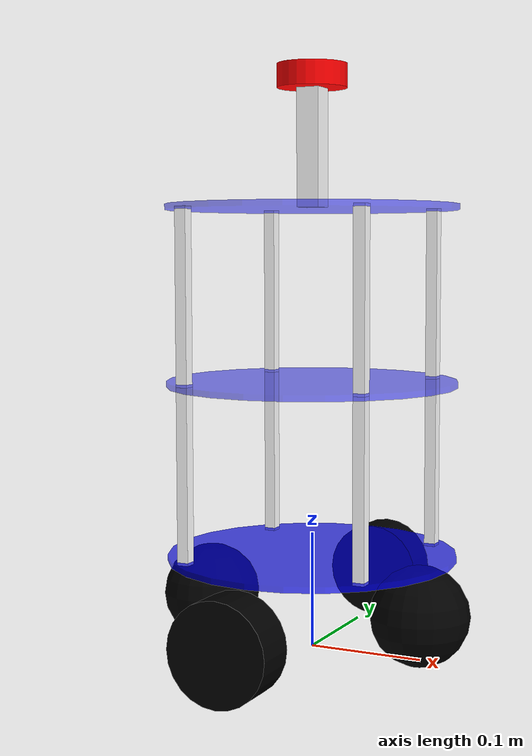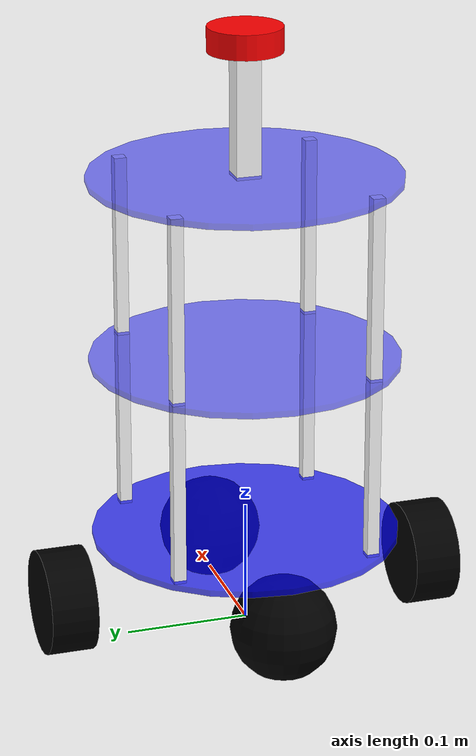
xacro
<?xml version="1.0"?>
<robot name="my_robot" xmlns:xacro="http://www.ros.org/wiki/xacro">

 <link name="base_footprint" />

  <joint name="base_link_joint" type="fixed">
    <parent link="base_footprint" />
    <child link="base_link" />

    <origin xyz="0 0 0.0805" rpy="0 0 0" />
  </joint>

  <link name="base_link">
    <visual>
      <!-- origin ở đây giúp căn chỉnh hình dáng so với tâm hệ tọa độ -->
      <origin xyz="0 0 0" rpy="0 0 0"/>
      <geometry>
        <!-- Tấm mica tròn dày 0.005m, bán kính 0.125m -->
        <cylinder length="0.005" radius="0.125"/>
      </geometry>
      <material name="blue">
        <color rgba="0 0 1 0.7"/> <!-- Màu xanh trong suốt cho giống mica -->
      </material>
    </visual>
  </link>

  <!-- Link cho bánh xe bên trái -->
  <link name="left_wheel">
    <visual>
      <!-- Xoay hình trụ 90 độ quanh trục X để nó nằm ngang (1.5708 rad = 90 deg) -->
      <origin xyz="0 0 0" rpy="1.5708 0 0"/>
      <geometry>
        <cylinder length="0.038" radius="0.0425"/>
      </geometry>
      <material name="black">
        <color rgba="0 0 0 1"/>
      </material>
    </visual>
  </link>

  <!-- Khớp nối bánh xe với base_link -->
  <joint name="left_wheel_joint" type="continuous">
    <parent link="base_link"/>
    <child link="left_wheel"/>
    <!-- Vị trí gắn: x=0 (giữa xe), y=0.154 (bên trái), z=-0.038 (dưới tấm mica) -->
    <origin xyz="0 0.154 -0.0425" rpy="0 0 0"/>
    <!-- Trục xoay của bánh xe là trục Y -->
    <axis xyz="0 1 0"/>
  </joint>

  <!-- Link cho bánh xe bên phai -->
  <link name="right_wheel">
    <visual>
      <!-- Xoay hình trụ 90 độ quanh trục X để nó nằm ngang (1.5708 rad = 90 deg) -->
      <origin xyz="0 0 0" rpy="1.5708 0 0"/>
      <geometry>
        <cylinder length="0.038" radius="0.0425"/>
      </geometry>
      <material name="black">
        <color rgba="0 0 0 1"/>
      </material>
    </visual>
  </link>

  <!-- hớp nối bánh xe với base_link -->
  <joint name="right_wheel_joint" type="continuous">
    <parent link="base_link"/>
    <child link="right_wheel"/>
    <!-- Vị trí gắn: x=0 (giữa xe), y=0.154 (bên trái), z=-0.038 (dưới tấm mica) -->
    <origin xyz="0 -0.154 -0.0425" rpy="0 0 0"/>
    <!-- Trục xoay của bánh xe là trục Y -->
    <axis xyz="0 1 0"/>
  </joint>

  <!-- Link cho thanh nhôm trai truoc -->
  <link name="pillar_front_left">
  <visual>
    <geometry>
      <box size="0.01 0.01 0.15"/> <!-- Thanh nhôm 20x20mm, cao 150mm -->
    </geometry>
    <material name="white">
      <color rgba="1 1 1 1"/>
    </material>
  </visual>
  </link>

  <!-- Khớp nối thanh nhôm vào tầng 1 (base_link) -->
  <joint name="pillar_front_left_joint" type="fixed">
  <parent link="base_link"/>
  <child link="pillar_front_left"/>
  <!-- Đặt thanh nhôm cách tâm 8cm về phía trước và 8cm sang trái -->
  <origin xyz="0.08 0.08 0.075" rpy="0 0 0"/>
  </joint>

  <!-- Link cho thanh nhôm trai sau -->
  <link name="pillar_behind_left">
  <visual>
    <geometry>
      <box size="0.01 0.01 0.15"/> <!-- Thanh nhôm 20x20mm, cao 100mm -->
    </geometry>
    <material name="white">
      <color rgba="1 1 1 1"/>
    </material>
  </visual>
  </link>

  <!-- Khớp nối thanh nhôm vào tầng 1 (base_link) -->
  <joint name="pillar_behind_left_joint" type="fixed">
  <parent link="base_link"/>
  <child link="pillar_behind_left"/>
  <!-- Đặt thanh nhôm cách tâm 8cm về phía trước và 8cm sang trái -->
  <origin xyz="-0.08 0.08 0.075" rpy="0 0 0"/>
  </joint>

  <!-- Link cho thanh nhôm phai truoc -->
  <link name="pillar_front_right">
  <visual>
    <geometry>
      <box size="0.01 0.01 0.15"/> <!-- Thanh nhôm 20x20mm, cao 100mm -->
    </geometry>
    <material name="white">
      <color rgba="1 1 1 1"/>
    </material>
  </visual>
  </link>

  <!-- Khớp nối thanh nhôm vào tầng 1 (base_link) -->
  <joint name="pillar_front_right_joint" type="fixed">
  <parent link="base_link"/>
  <child link="pillar_front_right"/>
  <!-- Đặt thanh nhôm cách tâm 8cm về phía trước và 8cm sang trái -->
  <origin xyz="0.08 -0.08 0.075" rpy="0 0 0"/>
  </joint>

 <!-- Link cho thanh nhôm phai sau -->
  <link name="pillar_behind_right">
  <visual>
    <geometry>
      <box size="0.01 0.01 0.15"/> <!-- Thanh nhôm 20x20mm, cao 100mm -->
    </geometry>
    <material name="white">
      <color rgba="1 1 1 1"/>
    </material>
  </visual>
  </link>

  <!-- Khớp nối thanh nhôm vào tầng 1 (base_link) -->
  <joint name="pillar_behind_right_joint" type="fixed">
  <parent link="base_link"/>
  <child link="pillar_behind_right"/>
  <!-- Đặt thanh nhôm cách tâm 8cm về phía trước và 8cm sang trái -->
  <origin xyz="-0.08 -0.08 0.075" rpy="0 0 0"/>
  </joint>

  <!-- Tam mica tang 2  -->
  <link name="deck_2">
  <visual>
    <geometry>
      <cylinder radius="0.125" length="0.005"/> <!-- Mica dày 3mm -->
    </geometry>
    <material name="blue">
      <color rgba="0 0 1 0.5"/>
    </material>
  </visual>
  </link>

  <joint name="deck_2_joint" type="fixed">
  <parent link="base_link"/>
  <child link="deck_2"/>
  <!-- Nằm trên base_link 10cm -->
  <origin xyz="0 0 0.15" rpy="0 0 0"/>
  </joint>

 <!-- Link cho thanh nhôm trai truoc tang 2 -->
  <link name="pillar_front_left_2">
  <visual>
    <geometry>
      <box size="0.01 0.01 0.15"/> <!-- Thanh nhôm 20x20mm, cao 100mm -->
    </geometry>
    <material name="white">
      <color rgba="1 1 1 1"/>
    </material>
  </visual>
  </link>

  <!-- Khớp nối thanh nhôm vào tầng 2 (base_link) -->
  <joint name="pillar_front_left_joint_2" type="fixed">
  <parent link="base_link"/>
  <child link="pillar_front_left_2"/>
  <!-- Đặt thanh nhôm cách tâm 8cm về phía trước và 8cm sang trái -->
  <origin xyz="0.08 0.08 0.225" rpy="0 0 0"/>
  </joint>

  <!-- Link cho thanh nhôm trai sau tang 2-->
  <link name="pillar_behind_left_2">
  <visual>
    <geometry>
      <box size="0.01 0.01 0.15"/> <!-- Thanh nhôm 20x20mm, cao 100mm -->
    </geometry>
    <material name="white">
      <color rgba="1 1 1 1"/>
    </material>
  </visual>
  </link>

  <!-- Khớp nối thanh nhôm vào tầng 2 (base_link) -->
  <joint name="pillar_behind_left_joint_2" type="fixed">
  <parent link="base_link"/>
  <child link="pillar_behind_left_2"/>
  <!-- Đặt thanh nhôm cách tâm 8cm về phía trước và 8cm sang trái -->
  <origin xyz="-0.08 0.08 0.225" rpy="0 0 0"/>
  </joint>

  <!-- Link cho thanh nhôm phai truoc tang 2 -->
  <link name="pillar_front_right_2">
  <visual>
    <geometry>
      <box size="0.01 0.01 0.15"/> <!-- Thanh nhôm 20x20mm, cao 100mm -->
    </geometry>
    <material name="white">
      <color rgba="1 1 1 1"/>
    </material>
  </visual>
  </link>

  <!-- Khớp nối thanh nhôm vào tầng 2 (base_link) -->
  <joint name="pillar_front_right_joint_2" type="fixed">
  <parent link="base_link"/>
  <child link="pillar_front_right_2"/>
  <!-- Đặt thanh nhôm cách tâm 8cm về phía trước và 8cm sang trái -->
  <origin xyz="0.08 -0.08 0.225" rpy="0 0 0"/>
  </joint>

 <!-- Link cho thanh nhôm phai sau tang 2-->
  <link name="pillar_behind_right_2">
  <visual>
    <geometry>
      <box size="0.01 0.01 0.15"/> <!-- Thanh nhôm 20x20mm, cao 100mm -->
    </geometry>
    <material name="white">
      <color rgba="1 1 1 1"/>
    </material>
  </visual>
  </link>

  <!-- Khớp nối thanh nhôm vào tầng 2 (base_link) -->
  <joint name="pillar_behind_right_joint_2" type="fixed">
  <parent link="base_link"/>
  <child link="pillar_behind_right_2"/>
  <!-- Đặt thanh nhôm cách tâm 8cm về phía trước và 8cm sang trái -->
  <origin xyz="-0.08 -0.08 0.225" rpy="0 0 0"/>
  </joint>

  <!-- Tam mica tang 3  -->
  <link name="deck_3">
  <visual>
    <geometry>
      <cylinder radius="0.125" length="0.005"/> <!-- Mica dày 5mm -->
    </geometry>
    <material name="blue">
      <color rgba="0 0 1 0.5"/>
    </material>
  </visual>
  </link>

  <joint name="deck_3_joint" type="fixed">
  <parent link="base_link"/>
  <child link="deck_3"/>
  <!-- Nằm trên base_link 10cm -->
  <origin xyz="0 0 0.3" rpy="0 0 0"/>
  </joint>

  <!-- Banh da huong phia truoc -->
  <link name="caster_wheel_front">
  <visual>
    <geometry>
      <sphere radius="0.0425"/> <!-- Bán kính nhỏ hơn bánh chính -->
    </geometry>
    <material name="black"/>
  </visual>
  <collision>
    <geometry>
      <sphere radius="0.025"/>
    </geometry>
  </collision>
  </link>

  <joint name="caster_wheel_joint_front" type="fixed">
  <parent link="base_link"/>
  <child link="caster_wheel_front"/>
  <!-- Đặt ở phía trước (x=0.1) và thấp xuống để chạm đất -->
  <origin xyz="0.1 0 -0.0425" rpy="0 0 0"/>
  </joint>

  <!-- Banh da huong phia sau -->
  <link name="caster_wheel_behind">
  <visual>
    <geometry>
      <sphere radius="0.0425"/> <!-- Bán kính nhỏ hơn bánh chính -->
    </geometry>
    <material name="black"/>
  </visual>
  <collision>
    <geometry>
      <sphere radius="0.025"/>
    </geometry>
  </collision>
  </link>

  <joint name="caster_wheel_joint_behind" type="fixed">
  <parent link="base_link"/>
  <child link="caster_wheel_behind"/>
  <!-- Đặt ở phía trước (x=0.1) và thấp xuống để chạm đất -->
  <origin xyz="-0.1 0 -0.0425" rpy="0 0 0"/>
  </joint>

  <link name="laser">
  <visual>
    <geometry>
      <cylinder radius="0.03" length="0.02"/>
    </geometry>
    <material name="red">
      <color rgba="1 0 0 1"/>
    </material>
  </visual>
  </link>

  <joint name="laser_joint" type="fixed">
  <parent link="deck_3"/> <!-- Gắn lên tầng 2 -->
  <child link="laser"/>
  <origin xyz="0.00 0 0.11" rpy="0 0 0"/>
  </joint>

  <link name="laser_frame_pillar">
  <visual>
    <geometry>
      <box size="0.02 0.02 0.1"/> <!-- Thanh nhôm 20x20mm, cao 180mm -->
    </geometry>
    <material name="white">
      <color rgba="1 1 1 1"/>
    </material>
  </visual>
  </link>

  <joint name="laser_joint_pillar" type="fixed">
  <parent link="deck_3"/> <!-- Gắn lên tầng 2 -->
  <child link="laser_frame_pillar"/>
  <origin xyz="0.00 0 0.05" rpy="0 0 0"/>
  </joint>

</robot>
